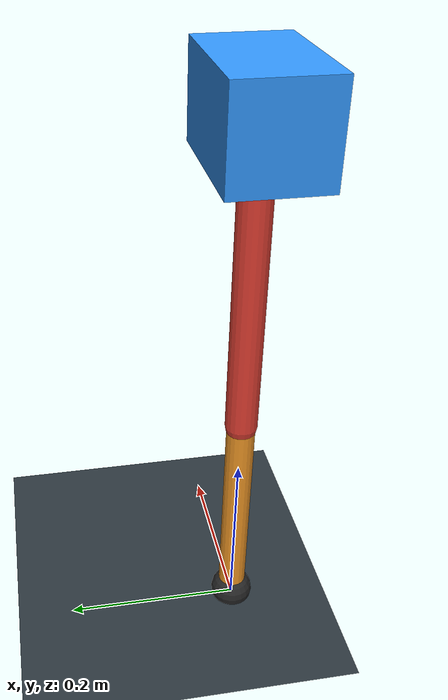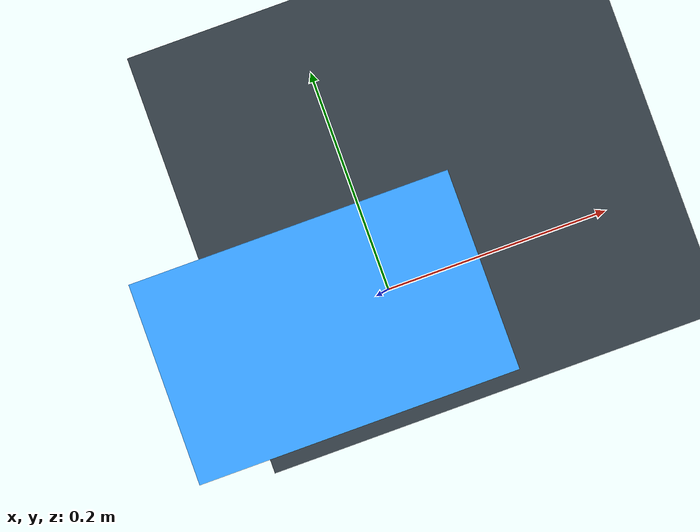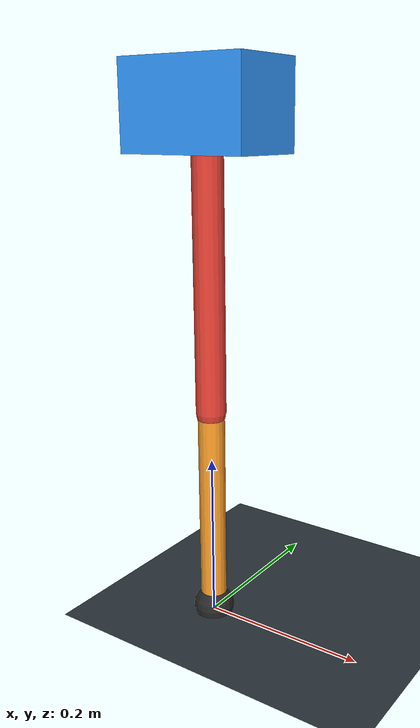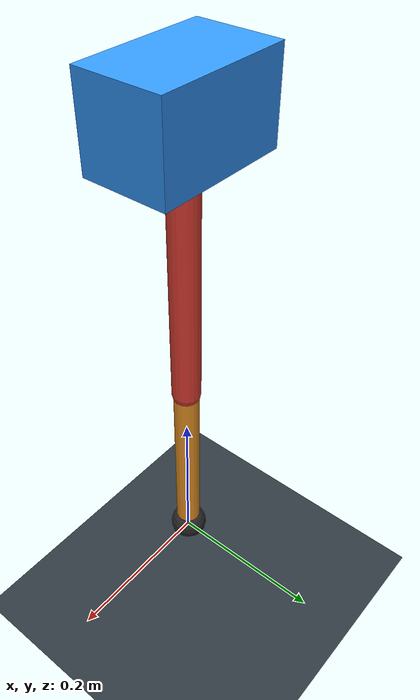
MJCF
<mujoco model="single_axis_two_bar">
  <compiler angle="radian" inertiafromgeom="true"/>
  <option timestep="0.001" integrator="implicitfast" gravity="0 0 -9.81"/>
  <default>
    <joint damping="0.08"/>
    <geom friction="1.2 0.01 0.0001" condim="3"/>
  </default>
  <worldbody>
    <geom name="floor" type="plane" size="5 5 0.1" rgba="0.18 0.22 0.25 1"/>
    <body name="carriage" pos="0 0 0.6086128589750629">
      <joint name="pole_slide" type="slide" axis="0 0 1"/>
      <geom name="payload" type="box" size="0.08 0.05 0.05" mass="2.3734502620619375" rgba="0.2 0.6 1 1"/>
      <body name="thigh" pos="0 0 0">
        <joint name="hip" type="hinge" axis="0 1 0"/>
        <geom name="thigh_link" type="capsule" fromto="0 0 0 0 0 -0.34704951053168936" size="0.018" mass="0.24727736210850787" rgba="0.9 0.25 0.2 1"/>
        <body name="shank" pos="0 0 -0.34704951053168936">
          <joint name="knee" type="hinge" axis="0 1 0"/>
          <geom name="shank_link" type="capsule" fromto="0 0 0 0 0 -0.25461323067971564" size="0.016" mass="0.1814152912763038" rgba="0.95 0.6 0.15 1"/>
          <geom name="foot" type="sphere" pos="0 0 -0.25461323067971564" size="0.025" mass="0.03" rgba="0.15 0.15 0.15 1"/>
          <site name="toe" pos="0 0 -0.25461323067971564" size="0.008"/>
        </body>
      </body>
    </body>
  </worldbody>
  <actuator>
    <motor name="hip_motor" joint="hip" ctrlrange="-36.944636850994456 36.944636850994456"/>
    <motor name="knee_motor" joint="knee" ctrlrange="-95.99816486420428 95.99816486420428"/>
  </actuator>
</mujoco>
